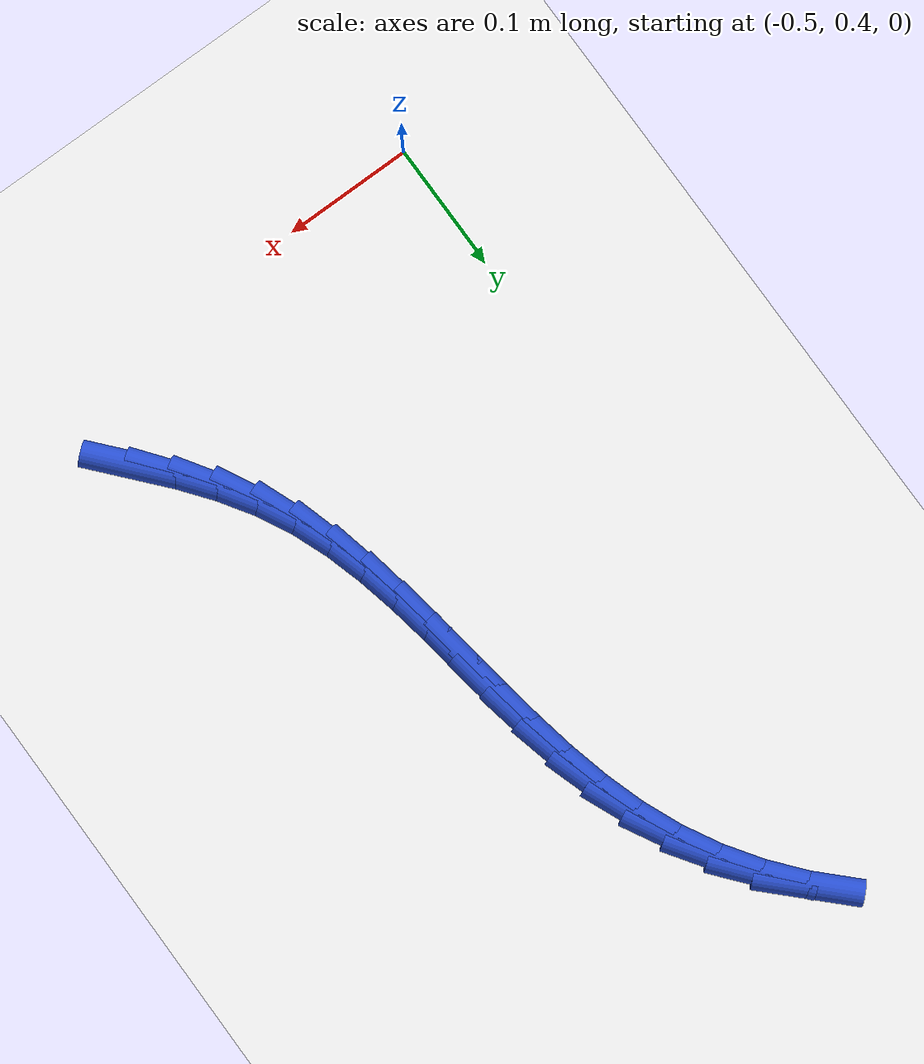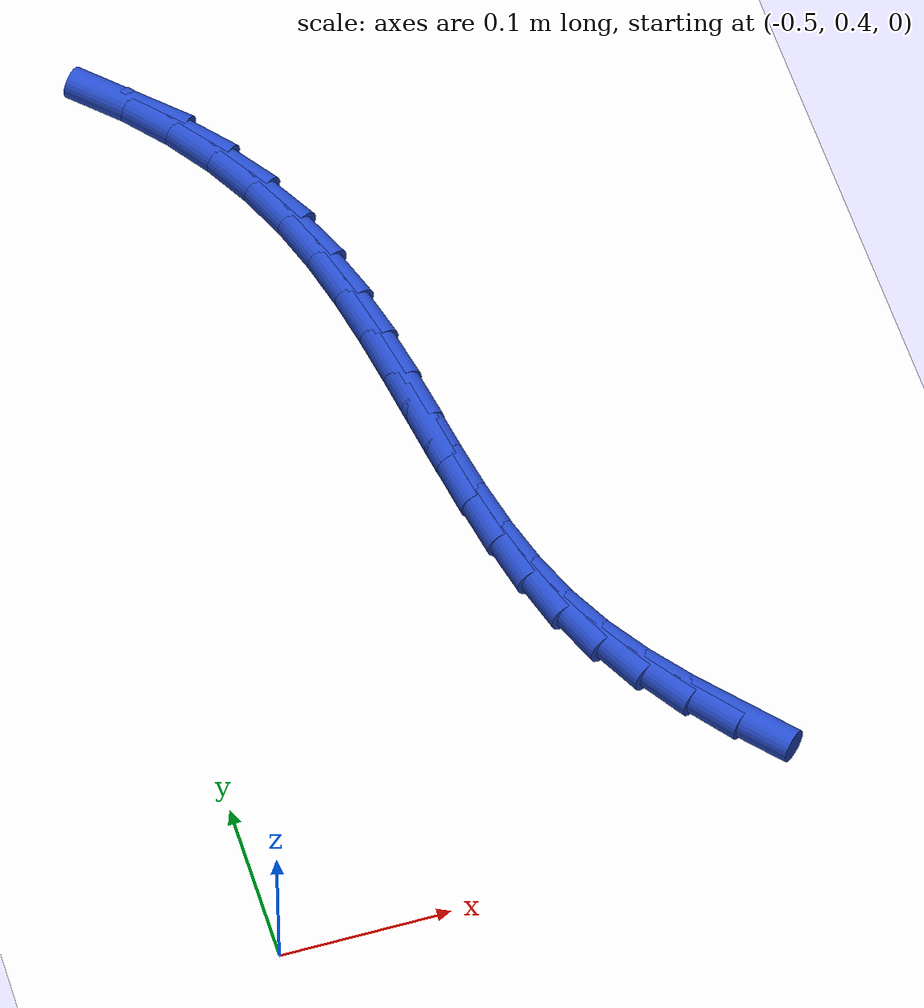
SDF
<sdf version="1.6">
 <world name="default">
  <model name="ground_plane">
   <static>1</static>
   <link name="link">
    <collision name="collision">
     <geometry><plane><normal>0 0 1</normal><size>100 100</size></plane></geometry>
     <surface><friction><ode><mu>100</mu><mu2>50</mu2></ode></friction></surface>
    </collision>
    <visual name="visual">
     <cast_shadows>0</cast_shadows>
     <geometry><plane><normal>0 0 1</normal><size>100 100</size></plane></geometry>
     <material>
      <script><uri>file://media/materials/scripts/gazebo.material</uri><name>Gazebo/WhiteGlow</name></script>
     </material>
    </visual>
   </link>
  </model>
  <model name="line">
   <link name="link_17">
    <pose>-0.2108550093967748 0.4727368450856239 0.01 0 1.57 -0.8559100244586151</pose>
    <collision name="collision">
     <geometry><cylinder><radius>0.01</radius><length>0.08</length></cylinder></geometry>
    </collision>
    <visual name="visual">
     <material>
      <script><name>Gazebo/Blue</name><uri>file://media/materials/scripts/gazebo.material</uri></script>
     </material>
     <geometry><cylinder><radius>0.01</radius><length>0.08</length></cylinder></geometry>
    </visual>
   </link>
   <link name="link_18">
    <pose>-0.23167302163269515 0.4967190497716043 0.01 0 1.57 -0.9154097171607953</pose>
    <collision name="collision">
     <geometry><cylinder><radius>0.01</radius><length>0.08</length></cylinder></geometry>
    </collision>
    <visual name="visual">
     <material>
      <script><name>Gazebo/Blue</name><uri>file://media/materials/scripts/gazebo.material</uri></script>
     </material>
     <geometry><cylinder><radius>0.01</radius><length>0.08</length></cylinder></geometry>
    </visual>
   </link>
   <link name="link_19">
    <pose>-0.2507063683393175 0.521478228407545 0.01 0 1.57 -0.9951305203033091</pose>
    <collision name="collision">
     <geometry><cylinder><radius>0.01</radius><length>0.08</length></cylinder></geometry>
    </collision>
    <visual name="visual">
     <material>
      <script><name>Gazebo/Blue</name><uri>file://media/materials/scripts/gazebo.material</uri></script>
     </material>
     <geometry><cylinder><radius>0.01</radius><length>0.08</length></cylinder></geometry>
    </visual>
   </link>
   <link name="link_20">
    <pose>-0.2674341811123598 0.5472533230352448 0.01 0 1.57 -1.0954069438895215</pose>
    <collision name="collision">
     <geometry><cylinder><radius>0.01</radius><length>0.08</length></cylinder></geometry>
    </collision>
    <visual name="visual">
     <material>
      <script><name>Gazebo/Blue</name><uri>file://media/materials/scripts/gazebo.material</uri></script>
     </material>
     <geometry><cylinder><radius>0.01</radius><length>0.08</length></cylinder></geometry>
    </visual>
   </link>
   <link name="link_21">
    <pose>-0.28134601725721703 0.5742789513794768 0.01 0 1.57 -1.1996570364553794</pose>
    <collision name="collision">
     <geometry><cylinder><radius>0.01</radius><length>0.08</length></cylinder></geometry>
    </collision>
    <visual name="visual">
     <material>
      <script><name>Gazebo/Blue</name><uri>file://media/materials/scripts/gazebo.material</uri></script>
     </material>
     <geometry><cylinder><radius>0.01</radius><length>0.08</length></cylinder></geometry>
    </visual>
   </link>
   <link name="link_22">
    <pose>-0.29237076668710016 0.6026075072651954 0.01 0 1.57 -1.284765469541798</pose>
    <collision name="collision">
     <geometry><cylinder><radius>0.01</radius><length>0.08</length></cylinder></geometry>
    </collision>
    <visual name="visual">
     <material>
      <script><name>Gazebo/Blue</name><uri>file://media/materials/scripts/gazebo.material</uri></script>
     </material>
     <geometry><cylinder><radius>0.01</radius><length>0.08</length></cylinder></geometry>
    </visual>
   </link>
   <link name="link_23">
    <pose>-0.30102853639954247 0.6320461628314878 0.01 0 1.57 -1.348655534851808</pose>
    <collision name="collision">
     <geometry><cylinder><radius>0.01</radius><length>0.08</length></cylinder></geometry>
    </collision>
    <visual name="visual">
     <material>
      <script><name>Gazebo/Blue</name><uri>file://media/materials/scripts/gazebo.material</uri></script>
     </material>
     <geometry><cylinder><radius>0.01</radius><length>0.08</length></cylinder></geometry>
    </visual>
   </link>
   <link name="link_24">
    <pose>-0.30788107803195985 0.6623848170887213 0.01 0 1.57 -1.3919565973893917</pose>
    <collision name="collision">
     <geometry><cylinder><radius>0.01</radius><length>0.08</length></cylinder></geometry>
    </collision>
    <visual name="visual">
     <material>
      <script><name>Gazebo/Blue</name><uri>file://media/materials/scripts/gazebo.material</uri></script>
     </material>
     <geometry><cylinder><radius>0.01</radius><length>0.08</length></cylinder></geometry>
    </visual>
   </link>
   <link name="link_25">
    <pose>-0.3134901432217676 0.6934133690472625 0.01 0 1.57 -1.4156706774662529</pose>
    <collision name="collision">
     <geometry><cylinder><radius>0.01</radius><length>0.08</length></cylinder></geometry>
    </collision>
    <visual name="visual">
     <material>
      <script><name>Gazebo/Blue</name><uri>file://media/materials/scripts/gazebo.material</uri></script>
     </material>
     <geometry><cylinder><radius>0.01</radius><length>0.08</length></cylinder></geometry>
    </visual>
   </link>
   <link name="link_26">
    <pose>-0.3184174836063813 0.7249217177174787 0.01 0 1.57 -1.4206552530040042</pose>
    <collision name="collision">
     <geometry><cylinder><radius>0.01</radius><length>0.08</length></cylinder></geometry>
    </collision>
    <visual name="visual">
     <material>
      <script><name>Gazebo/Blue</name><uri>file://media/materials/scripts/gazebo.material</uri></script>
     </material>
     <geometry><cylinder><radius>0.01</radius><length>0.08</length></cylinder></geometry>
    </visual>
   </link>
   <link name="link_27">
    <pose>-0.3232248508232165 0.7566997621097367 0.01 0 1.57 -1.4073939985921065</pose>
    <collision name="collision">
     <geometry><cylinder><radius>0.01</radius><length>0.08</length></cylinder></geometry>
    </collision>
    <visual name="visual">
     <material>
      <script><name>Gazebo/Blue</name><uri>file://media/materials/scripts/gazebo.material</uri></script>
     </material>
     <geometry><cylinder><radius>0.01</radius><length>0.08</length></cylinder></geometry>
    </visual>
   </link>
   <link name="link_28">
    <pose>-0.32847399650968884 0.7885374012344033 0.01 0 1.57 -1.3759738268489967</pose>
    <collision name="collision">
     <geometry><cylinder><radius>0.01</radius><length>0.08</length></cylinder></geometry>
    </collision>
    <visual name="visual">
     <material>
      <script><name>Gazebo/Blue</name><uri>file://media/materials/scripts/gazebo.material</uri></script>
     </material>
     <geometry><cylinder><radius>0.01</radius><length>0.08</length></cylinder></geometry>
    </visual>
   </link>
   <link name="link_29">
    <pose>-0.33472667230321385 0.8202245341018459 0.01 0 1.57 -1.326228524526145</pose>
    <collision name="collision">
     <geometry><cylinder><radius>0.01</radius><length>0.08</length></cylinder></geometry>
    </collision>
    <visual name="visual">
     <material>
      <script><name>Gazebo/Blue</name><uri>file://media/materials/scripts/gazebo.material</uri></script>
     </material>
     <geometry><cylinder><radius>0.01</radius><length>0.08</length></cylinder></geometry>
    </visual>
   </link>
   <link name="link_30">
    <pose>-0.3425446298412069 0.8515510597224313 0.01 0 1.57 -1.2580546531642047</pose>
    <collision name="collision">
     <geometry><cylinder><radius>0.01</radius><length>0.08</length></cylinder></geometry>
    </collision>
    <visual name="visual">
     <material>
      <script><name>Gazebo/Blue</name><uri>file://media/materials/scripts/gazebo.material</uri></script>
     </material>
     <geometry><cylinder><radius>0.01</radius><length>0.08</length></cylinder></geometry>
    </visual>
   </link>
   <link name="link_31">
    <pose>-0.3524896207610839 0.8823068771065266 0.01 0 1.57 -1.1719134885823648</pose>
    <collision name="collision">
     <geometry><cylinder><radius>0.01</radius><length>0.08</length></cylinder></geometry>
    </collision>
    <visual name="visual">
     <material>
      <script><name>Gazebo/Blue</name><uri>file://media/materials/scripts/gazebo.material</uri></script>
     </material>
     <geometry><cylinder><radius>0.01</radius><length>0.08</length></cylinder></geometry>
    </visual>
   </link>
   <link name="link_32">
    <pose>-0.36512339670026017 0.9122818852644988 0.01 0 1.57 -1.0725928964099547</pose>
    <collision name="collision">
     <geometry><cylinder><radius>0.01</radius><length>0.08</length></cylinder></geometry>
    </collision>
    <visual name="visual">
     <material>
      <script><name>Gazebo/Blue</name><uri>file://media/materials/scripts/gazebo.material</uri></script>
     </material>
     <geometry><cylinder><radius>0.01</radius><length>0.08</length></cylinder></geometry>
    </visual>
   </link>
   <link name="link_33">
    <pose>-0.3808754534632304 0.9412393610753276 0.01 0 1.57 -0.9746524733674867</pose>
    <collision name="collision">
     <geometry><cylinder><radius>0.01</radius><length>0.08</length></cylinder></geometry>
    </collision>
    <visual name="visual">
     <material>
      <script><name>Gazebo/Blue</name><uri>file://media/materials/scripts/gazebo.material</uri></script>
     </material>
     <geometry><cylinder><radius>0.01</radius><length>0.08</length></cylinder></geometry>
    </visual>
   </link>
   <link name="link_34">
    <pose>-0.3995921944709324 0.9688252091879533 0.01 0 1.57 -0.879632615308312</pose>
    <collision name="collision">
     <geometry><cylinder><radius>0.01</radius><length>0.08</length></cylinder></geometry>
    </collision>
    <visual name="visual">
     <material>
      <script><name>Gazebo/Blue</name><uri>file://media/materials/scripts/gazebo.material</uri></script>
     </material>
     <geometry><cylinder><radius>0.01</radius><length>0.08</length></cylinder></geometry>
    </visual>
   </link>
   <link name="link_35">
    <pose>-0.420959379234172 0.9946529978077153 0.01 0 1.57 -0.7849742737387273</pose>
    <collision name="collision">
     <geometry><cylinder><radius>0.01</radius><length>0.08</length></cylinder></geometry>
    </collision>
    <visual name="visual">
     <material>
      <script><name>Gazebo/Blue</name><uri>file://media/materials/scripts/gazebo.material</uri></script>
     </material>
     <geometry><cylinder><radius>0.01</radius><length>0.08</length></cylinder></geometry>
    </visual>
   </link>
  </model>
 </world>
</sdf>
